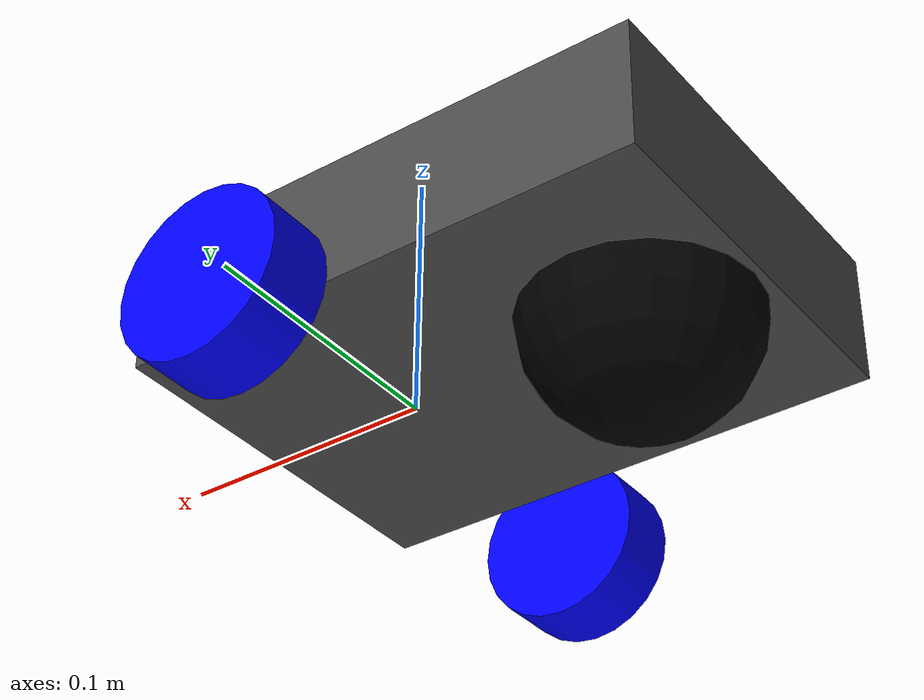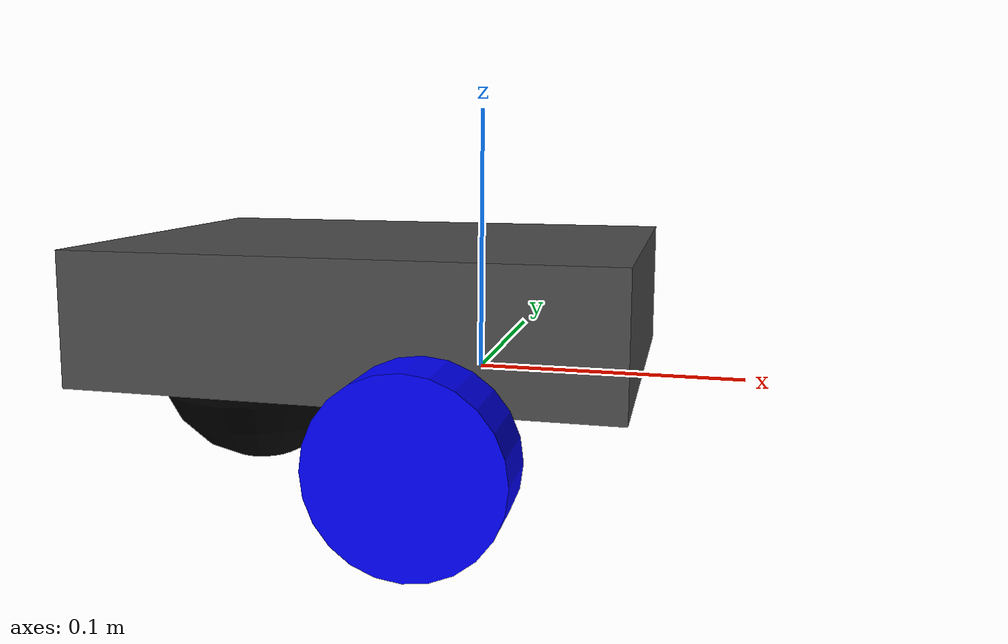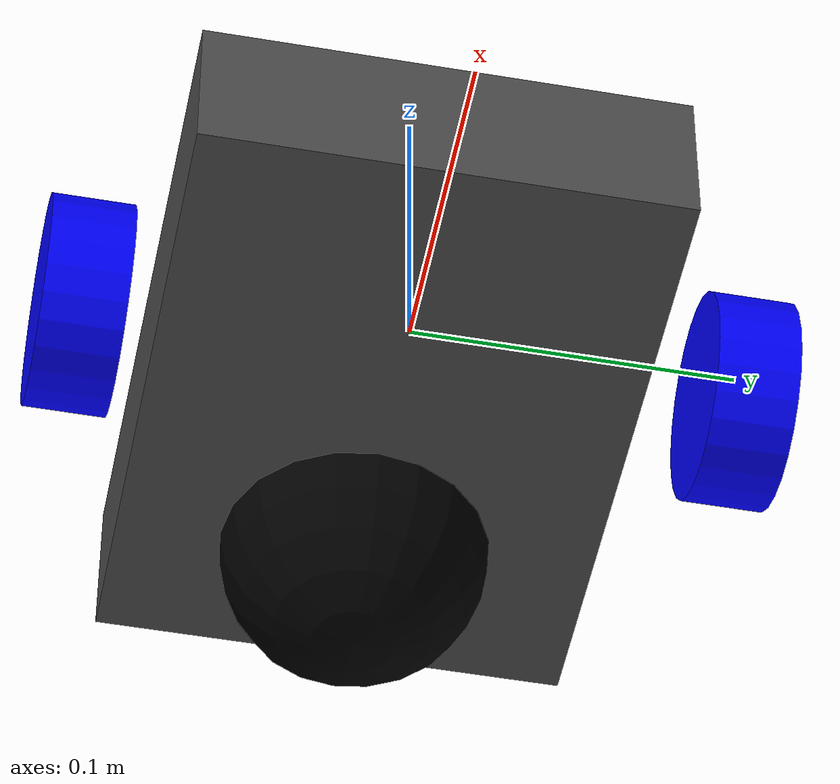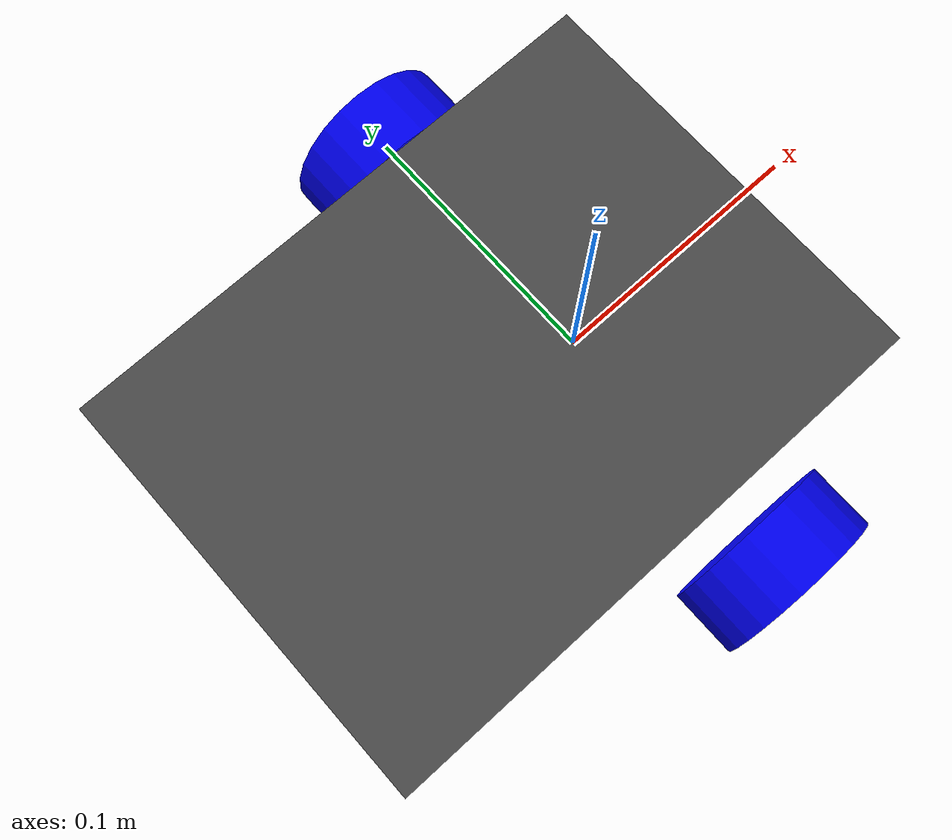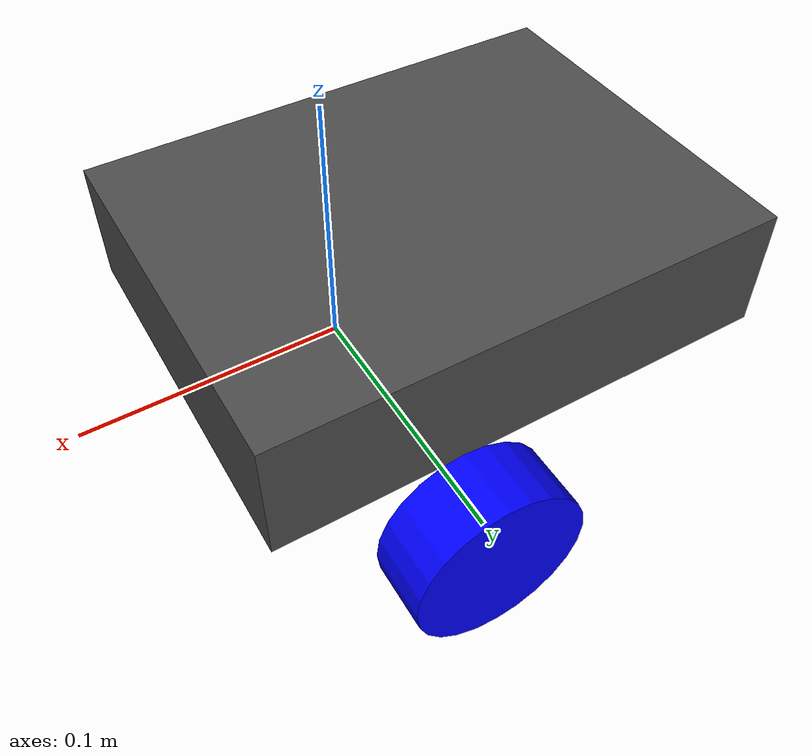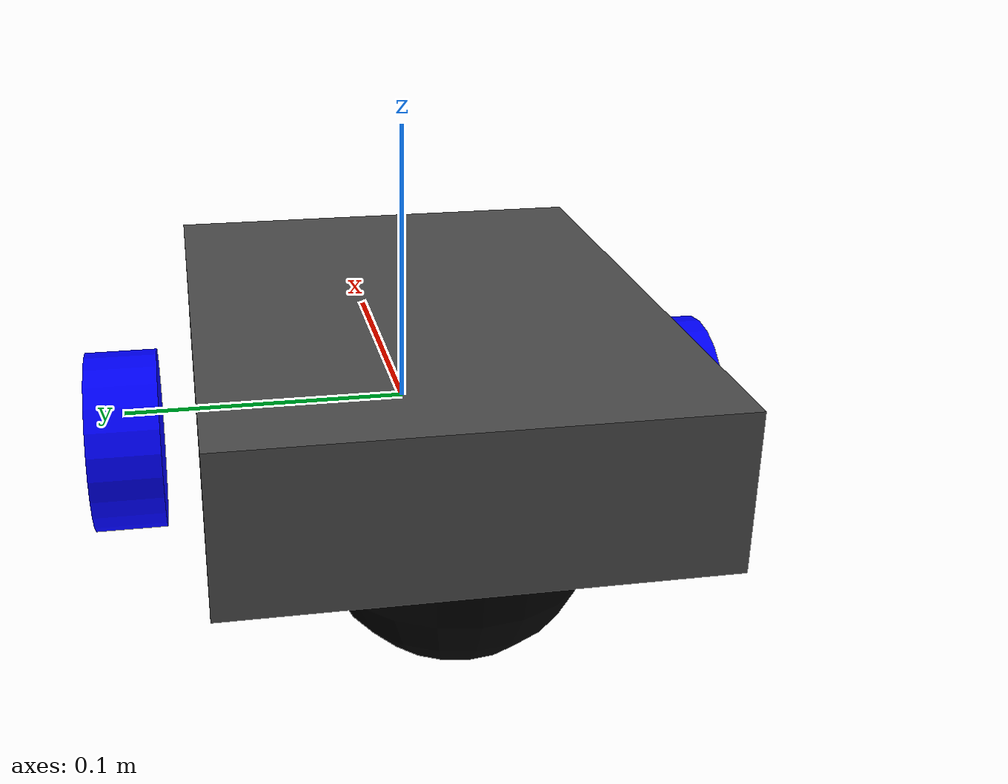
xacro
<?xml version="1.0"?>
<robot xmlns:xacro="http://www.ros.org/wiki/xacro">

    <xacro:include filename="inertial_macros.xacro"/>

    <material name="white">
        <color rgba="1 1 1 1" />
    </material>

    <material name="black">
        <color rgba="0 0 0 1" />
    </material>

    <material name="grey">
        <color rgba="0.3 0.3 0.3 1" />
    </material>

    <material name="blue">
        <color rgba="0 0 1 1" />
    </material>

    <material name="red">
        <color rgba="1 0 0 1" />
    </material>

    <!-- BASE LINK -->

    <link name="base_link">

    </link>

    <!-- CHASSIS LINK -->

    <joint name="chassis_joint" type="fixed">
        <parent link="base_link" />
        <child link="chassis" />
        <origin xyz="-0.1375 0 0"/>
    </joint>

    <link name="chassis">
        <visual>
            <origin xyz="0.1 0 0.025"/>
            <geometry>
                <box size="0.2 0.15 0.05"/>
            </geometry>
            <material name="grey"/>
        </visual>
        <collision>
            <origin xyz="0.1 0 0.025"/>
            <geometry>
                <box size="0.2 0.15 0.05"/>
            </geometry>
        </collision>
        <xacro:inertial_box mass="0.5" x="0.2" y="0.15" z="0.05">
            <origin xyz="0.1 0 0.025" rpy="0 0 0"/>
        </xacro:inertial_box>
    </link>

    <gazebo reference="chassis">
        <material>Gazebo/DarkGrey</material>
    </gazebo>

    <!-- LEFT WHEEL LINK -->
    <joint name="left_wheel_joint" type="continuous">
        <parent link="base_link"/>
        <child link="left_wheel"/>
        <origin xyz="0 0.1 -0.01" rpy="-${pi/2} 0 0"/>
        <axis xyz="0 0 1"/>
    </joint>

    <link name="left_wheel">
        <visual>
            <origin xyz="0 0 0"/>
            <geometry>
                <cylinder radius="0.032" length="0.025"/>
            </geometry>
            <material name="blue"/>
        </visual>
        <collision>
            <origin xyz="0 0 0"/>
            <geometry>
                <sphere radius="0.032"/>
            </geometry>
        </collision>
        <xacro:inertial_cylinder mass="0.1" radius="0.032" length="0.025">
            <origin xyz="0 0 0" rpy="0 0 0"/>
        </xacro:inertial_cylinder>
    </link>

    <gazebo reference="left_wheel">
        <material>Gazebo/Blue</material>
    </gazebo>

    <!-- RIGHT WHEEL LINK -->
    <joint name="right_wheel_joint" type="continuous">
        <parent link="base_link"/>
        <child link="right_wheel"/>
        <origin xyz="0 -0.1 -0.01" rpy="${pi/2} 0 0"/>
        <axis xyz="0 0 -1"/>
    </joint>

    <link name="right_wheel">
        <visual>
            <origin xyz="0 0 0"/>
            <geometry>
                <cylinder radius="0.032" length="0.025"/>
            </geometry>
            <material name="blue"/>
        </visual>
        <collision>
            <origin xyz="0 0 0"/>
            <geometry>
                <sphere radius="0.032"/>
            </geometry>
        </collision>
        <xacro:inertial_cylinder mass="0.1" radius="0.032" length="0.025">
            <origin xyz="0 0 0" rpy="0 0 0"/>
        </xacro:inertial_cylinder>
    </link>

    <gazebo reference="right_wheel">
        <material>Gazebo/Blue</material>
    </gazebo>

    <!-- CASTER WHEEL LINK -->
    <joint name="caster_wheel_joint" type="fixed">
        <parent link="chassis"/>
        <child link="caster_wheel"/>
        <origin xyz="0.045 0 0"/>
    </joint>

    <link name="caster_wheel">
        <visual>
            <geometry>
                <sphere radius="0.0425"/>
            </geometry>
            <material name="black"/>
        </visual>
        <collision>
            <geometry>
                <sphere radius="0.0425"/>
            </geometry>
        </collision>
        <xacro:inertial_sphere mass="0.01" radius="0.0425">
            <origin xyz="0 0 0" rpy="0 0 0"/>
        </xacro:inertial_sphere>
    </link>

    <gazebo reference="caster_wheel">
        <material>Gazebo/Black</material>
        <mu1>0.001</mu1>
        <mu2>0.001</mu2>
    </gazebo>

</robot>
